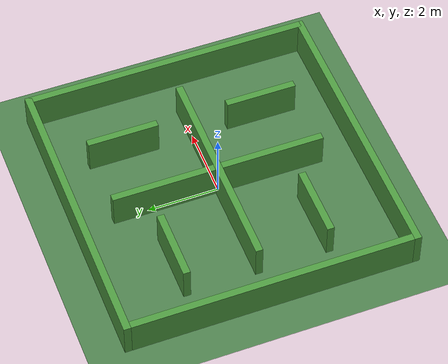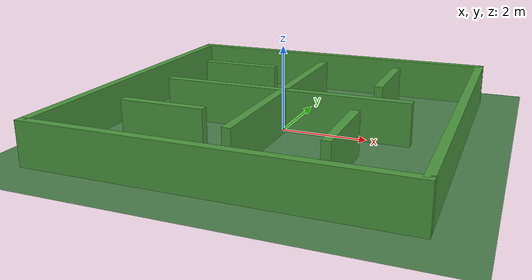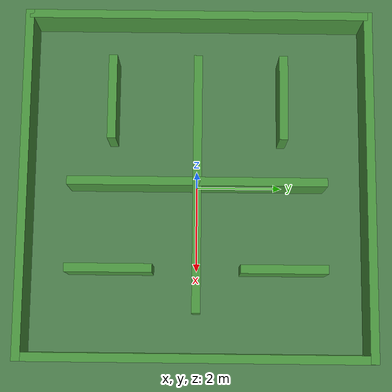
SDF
<?xml version="1.0" ?>
<sdf version="1.6">
  <world name="simple_maze">
    <!-- Thay thế grass_plane bằng mặt đất thủ công -->
    <model name="ground_plane">
      <static>true</static>
      <link name="link">
        <collision name="collision">
          <geometry>
            <plane>
              <normal>0 0 1</normal>
              <size>100 100</size>
            </plane>
          </geometry>
        </collision>
        <visual name="visual">
          <geometry>
            <plane>
              <normal>0 0 1</normal>
              <size>100 100</size>
            </plane>
          </geometry>
          <material>
            <ambient>0.3 0.5 0.3 1</ambient>
            <diffuse>0.3 0.5 0.3 1</diffuse>
          </material>
        </visual>
      </link>
    </model>

    <!-- Thay thế sun bằng ánh sáng thủ công -->
    <light type="point" name="sun">
      <pose>0 0 10 0 0 0</pose>
      <diffuse>0.8 0.8 0.8 1</diffuse>
      <specular>0.2 0.2 0.2 1</specular>
      <attenuation>
        <range>20</range>
        <linear>0.1</linear>
      </attenuation>
    </light>

    <!-- Camera -->
    <gui fullscreen='0'>
      <camera name='user_camera'>
        <pose>0 0 15 0 1.57 0</pose>
        <view_controller>orbit</view_controller>
        <projection_type>perspective</projection_type>
      </camera>
    </gui>

    <!-- Physics -->
    <physics type="ode">
      <real_time_update_rate>1000.0</real_time_update_rate>
      <max_step_size>0.001</max_step_size>
      <real_time_factor>1</real_time_factor>
      <ode>
        <solver>
          <type>quick</type>
          <iters>150</iters>
          <precon_iters>0</precon_iters>
          <sor>1.400000</sor>
          <use_dynamic_moi_rescaling>1</use_dynamic_moi_rescaling>
        </solver>
        <constraints>
          <cfm>0.00001</cfm>
          <erp>0.2</erp>
          <contact_max_correcting_vel>2000.000000</contact_max_correcting_vel>
          <contact_surface_layer>0.01000</contact_surface_layer>
        </constraints>
      </ode>
    </physics>

    <!-- Khung viền ngoài -->
    <!-- Tường bên trái -->
    <model name='left_wall'>
      <static>1</static>
      <link name='link'>
        <collision name='collision'>
          <geometry>
            <box>
              <size>0.2 8.0 1.0</size>
            </box>
          </geometry>
        </collision>
        <visual name='visual'>
          <geometry>
            <box>
              <size>0.2 8.0 1.0</size>
            </box>
          </geometry>
          <material>
            <script>
              <uri>file://media/materials/scripts/gazebo.material</uri>
              <name>Gazebo/Grass</name>
            </script>
          </material>
        </visual>
      </link>
      <pose>-4.0 0 0.5 0 0 0</pose>
    </model>

    <!-- Tường bên phải -->
    <model name='right_wall'>
      <static>1</static>
      <link name='link'>
        <collision name='collision'>
          <geometry>
            <box>
              <size>0.2 8.0 1.0</size>
            </box>
          </geometry>
        </collision>
        <visual name='visual'>
          <geometry>
            <box>
              <size>0.2 8.0 1.0</size>
            </box>
          </geometry>
          <material>
            <script>
              <uri>file://media/materials/scripts/gazebo.material</uri>
              <name>Gazebo/Grass</name>
            </script>
          </material>
        </visual>
      </link>
      <pose>4.0 0 0.5 0 0 0</pose>
    </model>

    <!-- Tường trên -->
    <model name='top_wall'>
      <static>1</static>
      <link name='link'>
        <collision name='collision'>
          <geometry>
            <box>
              <size>8.2 0.2 1.0</size>
            </box>
          </geometry>
        </collision>
        <visual name='visual'>
          <geometry>
            <box>
              <size>8.2 0.2 1.0</size>
            </box>
          </geometry>
          <material>
            <script>
              <uri>file://media/materials/scripts/gazebo.material</uri>
              <name>Gazebo/Grass</name>
            </script>
          </material>
        </visual>
      </link>
      <pose>0 4.0 0.5 0 0 0</pose>
    </model>

    <!-- Tường dưới -->
    <model name='bottom_wall'>
      <static>1</static>
      <link name='link'>
        <collision name='collision'>
          <geometry>
            <box>
              <size>8.2 0.2 1.0</size>
            </box>
          </geometry>
        </collision>
        <visual name='visual'>
          <geometry>
            <box>
              <size>8.2 0.2 1.0</size>
            </box>
          </geometry>
          <material>
            <script>
              <uri>file://media/materials/scripts/gazebo.material</uri>
              <name>Gazebo/Grass</name>
            </script>
          </material>
        </visual>
      </link>
      <pose>0 -4.0 0.5 0 0 0</pose>
    </model>

    <!-- Tường bên trong đơn giản dạng chữ thập -->
    <!-- Tường ngang chính -->
    <model name='horizontal_wall'>
      <static>1</static>
      <link name='link'>
        <collision name='collision'>
          <geometry>
            <box>
              <size>6.0 0.2 1.0</size>
            </box>
          </geometry>
        </collision>
        <visual name='visual'>
          <geometry>
            <box>
              <size>6.0 0.2 1.0</size>
            </box>
          </geometry>
          <material>
            <script>
              <uri>file://media/materials/scripts/gazebo.material</uri>
              <name>Gazebo/Grass</name>
            </script>
          </material>
        </visual>
      </link>
      <pose>0 0 0.5 0 0 0</pose>
    </model>

    <!-- Tường dọc chính -->
    <model name='vertical_wall'>
      <static>1</static>
      <link name='link'>
        <collision name='collision'>
          <geometry>
            <box>
              <size>0.2 6.0 1.0</size>
            </box>
          </geometry>
        </collision>
        <visual name='visual'>
          <geometry>
            <box>
              <size>0.2 6.0 1.0</size>
            </box>
          </geometry>
          <material>
            <script>
              <uri>file://media/materials/scripts/gazebo.material</uri>
              <name>Gazebo/Grass</name>
            </script>
          </material>
        </visual>
      </link>
      <pose>0 0 0.5 0 0 0</pose>
    </model>

    <!-- Tường ngắn 1 - Góc trên bên trái -->
    <model name='short_wall_1'>
      <static>1</static>
      <link name='link'>
        <collision name='collision'>
          <geometry>
            <box>
              <size>2.0 0.2 1.0</size>
            </box>
          </geometry>
        </collision>
        <visual name='visual'>
          <geometry>
            <box>
              <size>2.0 0.2 1.0</size>
            </box>
          </geometry>
          <material>
            <script>
              <uri>file://media/materials/scripts/gazebo.material</uri>
              <name>Gazebo/Grass</name>
            </script>
          </material>
        </visual>
      </link>
      <pose>-2.0 2.0 0.5 0 0 0</pose>
    </model>

    <!-- Tường ngắn 2 - Góc dưới bên phải -->
    <model name='short_wall_2'>
      <static>1</static>
      <link name='link'>
        <collision name='collision'>
          <geometry>
            <box>
              <size>0.2 2.0 1.0</size>
            </box>
          </geometry>
        </collision>
        <visual name='visual'>
          <geometry>
            <box>
              <size>0.2 2.0 1.0</size>
            </box>
          </geometry>
          <material>
            <script>
              <uri>file://media/materials/scripts/gazebo.material</uri>
              <name>Gazebo/Grass</name>
            </script>
          </material>
        </visual>
      </link>
      <pose>2.0 -2.0 0.5 0 0 0</pose>
    </model>

    <!-- Tường ngắn 3 - Góc dưới bên trái -->
    <model name='short_wall_3'>
      <static>1</static>
      <link name='link'>
        <collision name='collision'>
          <geometry>
            <box>
              <size>2.0 0.2 1.0</size>
            </box>
          </geometry>
        </collision>
        <visual name='visual'>
          <geometry>
            <box>
              <size>2.0 0.2 1.0</size>
            </box>
          </geometry>
          <material>
            <script>
              <uri>file://media/materials/scripts/gazebo.material</uri>
              <name>Gazebo/Grass</name>
            </script>
          </material>
        </visual>
      </link>
      <pose>-2.0 -2.0 0.5 0 0 0</pose>
    </model>

    <!-- Tường ngắn 4 - Góc trên bên phải -->
    <model name='short_wall_4'>
      <static>1</static>
      <link name='link'>
        <collision name='collision'>
          <geometry>
            <box>
              <size>0.2 2.0 1.0</size>
            </box>
          </geometry>
        </collision>
        <visual name='visual'>
          <geometry>
            <box>
              <size>0.2 2.0 1.0</size>
            </box>
          </geometry>
          <material>
            <script>
              <uri>file://media/materials/scripts/gazebo.material</uri>
              <name>Gazebo/Grass</name>
            </script>
          </material>
        </visual>
      </link>
      <pose>2.0 2.0 0.5 0 0 0</pose>
    </model>
  </world>
</sdf>
